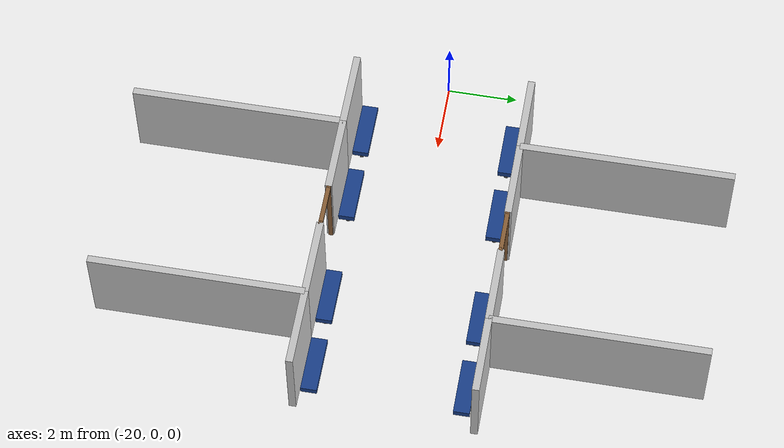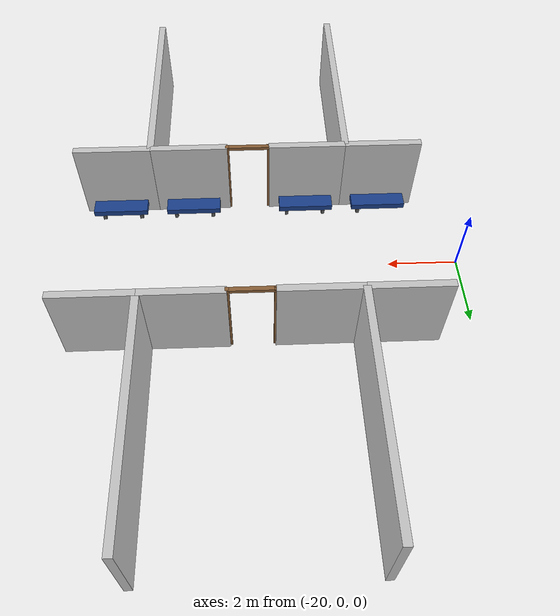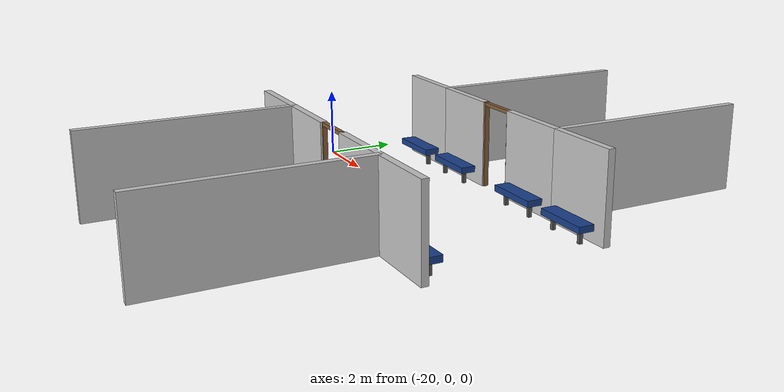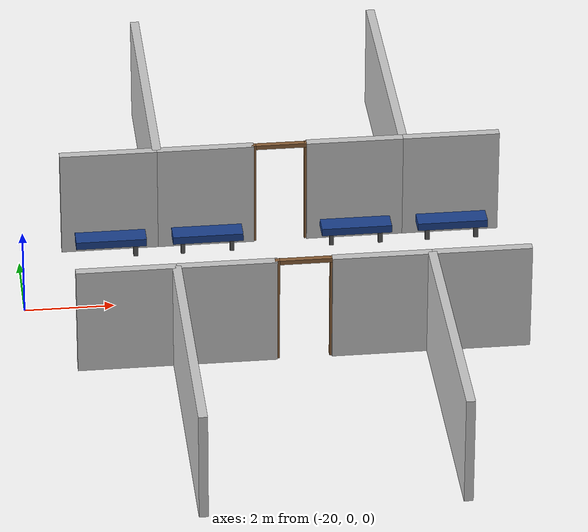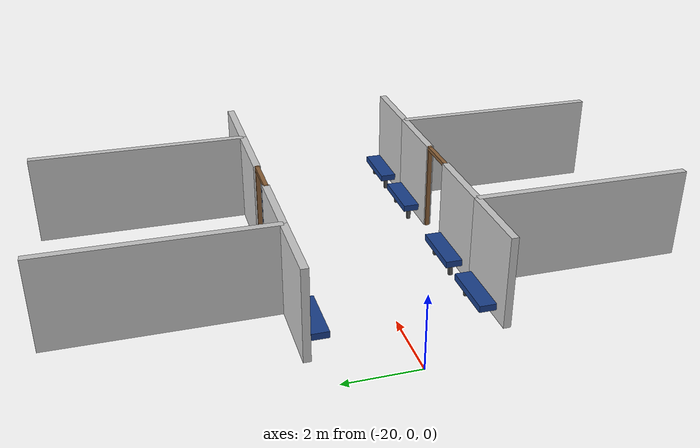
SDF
<sdf version="1.9">
 <world name="hospital_easy">
  <model name="north_partition_1">
   <static>true</static>
   <pose>-16.800 5.500 1.250 0 0 0</pose>
   <link name="link">
    <collision name="collision"><geometry><box><size>0.200 6.000 2.500</size></box></geometry></collision>
    <visual name="visual">
     <geometry><box><size>0.200 6.000 2.500</size></box></geometry>
     <material><ambient>0.78 0.78 0.78 1.0</ambient><diffuse>0.78 0.78 0.78 1.0</diffuse></material>
    </visual>
   </link>
  </model>
  <model name="north_partition_2">
   <static>true</static>
   <pose>-11.200 5.500 1.250 0 0 0</pose>
   <link name="link">
    <collision name="collision"><geometry><box><size>0.200 6.000 2.500</size></box></geometry></collision>
    <visual name="visual">
     <geometry><box><size>0.200 6.000 2.500</size></box></geometry>
     <material><ambient>0.78 0.78 0.78 1.0</ambient><diffuse>0.78 0.78 0.78 1.0</diffuse></material>
    </visual>
   </link>
  </model>
  <model name="south_partition_1">
   <static>true</static>
   <pose>-16.800 -5.500 1.250 0 0 0</pose>
   <link name="link">
    <collision name="collision"><geometry><box><size>0.200 6.000 2.500</size></box></geometry></collision>
    <visual name="visual">
     <geometry><box><size>0.200 6.000 2.500</size></box></geometry>
     <material><ambient>0.78 0.78 0.78 1.0</ambient><diffuse>0.78 0.78 0.78 1.0</diffuse></material>
    </visual>
   </link>
  </model>
  <model name="south_partition_2">
   <static>true</static>
   <pose>-11.200 -5.500 1.250 0 0 0</pose>
   <link name="link">
    <collision name="collision"><geometry><box><size>0.200 6.000 2.500</size></box></geometry></collision>
    <visual name="visual">
     <geometry><box><size>0.200 6.000 2.500</size></box></geometry>
     <material><ambient>0.78 0.78 0.78 1.0</ambient><diffuse>0.78 0.78 0.78 1.0</diffuse></material>
    </visual>
   </link>
  </model>
  <model name="north_room_02_wall_right">
   <static>true</static>
   <pose>-17.900 2.500 1.250 0 0 0</pose>
   <link name="link">
    <collision name="collision"><geometry><box><size>2.200 0.200 2.500</size></box></geometry></collision>
    <visual name="visual">
     <geometry><box><size>2.200 0.200 2.500</size></box></geometry>
     <material><ambient>0.78 0.78 0.78 1.0</ambient><diffuse>0.78 0.78 0.78 1.0</diffuse></material>
    </visual>
   </link>
  </model>
  <model name="north_room_03_wall_left">
   <static>true</static>
   <pose>-15.700 2.500 1.250 0 0 0</pose>
   <link name="link">
    <collision name="collision"><geometry><box><size>2.200 0.200 2.500</size></box></geometry></collision>
    <visual name="visual">
     <geometry><box><size>2.200 0.200 2.500</size></box></geometry>
     <material><ambient>0.78 0.78 0.78 1.0</ambient><diffuse>0.78 0.78 0.78 1.0</diffuse></material>
    </visual>
   </link>
  </model>
  <model name="north_room_03_wall_right">
   <static>true</static>
   <pose>-12.300 2.500 1.250 0 0 0</pose>
   <link name="link">
    <collision name="collision"><geometry><box><size>2.200 0.200 2.500</size></box></geometry></collision>
    <visual name="visual">
     <geometry><box><size>2.200 0.200 2.500</size></box></geometry>
     <material><ambient>0.78 0.78 0.78 1.0</ambient><diffuse>0.78 0.78 0.78 1.0</diffuse></material>
    </visual>
   </link>
  </model>
  <model name="north_room_04_wall_left">
   <static>true</static>
   <pose>-10.100 2.500 1.250 0 0 0</pose>
   <link name="link">
    <collision name="collision"><geometry><box><size>2.200 0.200 2.500</size></box></geometry></collision>
    <visual name="visual">
     <geometry><box><size>2.200 0.200 2.500</size></box></geometry>
     <material><ambient>0.78 0.78 0.78 1.0</ambient><diffuse>0.78 0.78 0.78 1.0</diffuse></material>
    </visual>
   </link>
  </model>
  <model name="south_room_02_wall_right">
   <static>true</static>
   <pose>-17.900 -2.500 1.250 0 0 0</pose>
   <link name="link">
    <collision name="collision"><geometry><box><size>2.200 0.200 2.500</size></box></geometry></collision>
    <visual name="visual">
     <geometry><box><size>2.200 0.200 2.500</size></box></geometry>
     <material><ambient>0.78 0.78 0.78 1.0</ambient><diffuse>0.78 0.78 0.78 1.0</diffuse></material>
    </visual>
   </link>
  </model>
  <model name="south_room_03_wall_left">
   <static>true</static>
   <pose>-15.700 -2.500 1.250 0 0 0</pose>
   <link name="link">
    <collision name="collision"><geometry><box><size>2.200 0.200 2.500</size></box></geometry></collision>
    <visual name="visual">
     <geometry><box><size>2.200 0.200 2.500</size></box></geometry>
     <material><ambient>0.78 0.78 0.78 1.0</ambient><diffuse>0.78 0.78 0.78 1.0</diffuse></material>
    </visual>
   </link>
  </model>
  <model name="south_room_03_wall_right">
   <static>true</static>
   <pose>-12.300 -2.500 1.250 0 0 0</pose>
   <link name="link">
    <collision name="collision"><geometry><box><size>2.200 0.200 2.500</size></box></geometry></collision>
    <visual name="visual">
     <geometry><box><size>2.200 0.200 2.500</size></box></geometry>
     <material><ambient>0.78 0.78 0.78 1.0</ambient><diffuse>0.78 0.78 0.78 1.0</diffuse></material>
    </visual>
   </link>
  </model>
  <model name="south_room_04_wall_left">
   <static>true</static>
   <pose>-10.100 -2.500 1.250 0 0 0</pose>
   <link name="link">
    <collision name="collision"><geometry><box><size>2.200 0.200 2.500</size></box></geometry></collision>
    <visual name="visual">
     <geometry><box><size>2.200 0.200 2.500</size></box></geometry>
     <material><ambient>0.78 0.78 0.78 1.0</ambient><diffuse>0.78 0.78 0.78 1.0</diffuse></material>
    </visual>
   </link>
  </model>
  <model name="north_door_03_left">
   <static>true</static>
   <pose>-14.600 2.490 1.250 0 0 0</pose>
   <link name="link">
    <collision name="collision"><geometry><box><size>0.100 0.120 2.500</size></box></geometry></collision>
    <visual name="visual">
     <geometry><box><size>0.100 0.120 2.500</size></box></geometry>
     <material><ambient>0.55 0.38 0.22 1.0</ambient><diffuse>0.55 0.38 0.22 1.0</diffuse></material>
    </visual>
   </link>
  </model>
  <model name="north_door_03_right">
   <static>true</static>
   <pose>-13.400 2.490 1.250 0 0 0</pose>
   <link name="link">
    <collision name="collision"><geometry><box><size>0.100 0.120 2.500</size></box></geometry></collision>
    <visual name="visual">
     <geometry><box><size>0.100 0.120 2.500</size></box></geometry>
     <material><ambient>0.55 0.38 0.22 1.0</ambient><diffuse>0.55 0.38 0.22 1.0</diffuse></material>
    </visual>
   </link>
  </model>
  <model name="north_door_03_top">
   <static>true</static>
   <pose>-14.000 2.490 2.450 0 0 0</pose>
   <link name="link">
    <collision name="collision"><geometry><box><size>1.200 0.120 0.100</size></box></geometry></collision>
    <visual name="visual">
     <geometry><box><size>1.200 0.120 0.100</size></box></geometry>
     <material><ambient>0.55 0.38 0.22 1.0</ambient><diffuse>0.55 0.38 0.22 1.0</diffuse></material>
    </visual>
   </link>
  </model>
  <model name="south_door_03_left">
   <static>true</static>
   <pose>-14.600 -2.490 1.250 0 0 0</pose>
   <link name="link">
    <collision name="collision"><geometry><box><size>0.100 0.120 2.500</size></box></geometry></collision>
    <visual name="visual">
     <geometry><box><size>0.100 0.120 2.500</size></box></geometry>
     <material><ambient>0.55 0.38 0.22 1.0</ambient><diffuse>0.55 0.38 0.22 1.0</diffuse></material>
    </visual>
   </link>
  </model>
  <model name="south_door_03_right">
   <static>true</static>
   <pose>-13.400 -2.490 1.250 0 0 0</pose>
   <link name="link">
    <collision name="collision"><geometry><box><size>0.100 0.120 2.500</size></box></geometry></collision>
    <visual name="visual">
     <geometry><box><size>0.100 0.120 2.500</size></box></geometry>
     <material><ambient>0.55 0.38 0.22 1.0</ambient><diffuse>0.55 0.38 0.22 1.0</diffuse></material>
    </visual>
   </link>
  </model>
  <model name="south_door_03_top">
   <static>true</static>
   <pose>-14.000 -2.490 2.450 0 0 0</pose>
   <link name="link">
    <collision name="collision"><geometry><box><size>1.200 0.120 0.100</size></box></geometry></collision>
    <visual name="visual">
     <geometry><box><size>1.200 0.120 0.100</size></box></geometry>
     <material><ambient>0.55 0.38 0.22 1.0</ambient><diffuse>0.55 0.38 0.22 1.0</diffuse></material>
    </visual>
   </link>
  </model>
  <model name="north_room_02_bench_right_seat">
   <static>true</static>
   <pose>-17.900 2.100 0.450 0 0 0</pose>
   <link name="link">
    <collision name="collision"><geometry><box><size>1.600 0.450 0.180</size></box></geometry></collision>
    <visual name="visual">
     <geometry><box><size>1.600 0.450 0.180</size></box></geometry>
     <material><ambient>0.10 0.25 0.55 1.0</ambient><diffuse>0.10 0.25 0.55 1.0</diffuse></material>
    </visual>
   </link>
  </model>
  <model name="north_room_02_bench_right_leg_right">
   <static>true</static>
   <pose>-17.340 2.100 0.135 0 0 0</pose>
   <link name="link">
    <collision name="collision"><geometry><box><size>0.100 0.100 0.270</size></box></geometry></collision>
    <visual name="visual">
     <geometry><box><size>0.100 0.100 0.270</size></box></geometry>
     <material><ambient>0.35 0.35 0.35 1.0</ambient><diffuse>0.35 0.35 0.35 1.0</diffuse></material>
    </visual>
   </link>
  </model>
  <model name="north_room_03_bench_left_seat">
   <static>true</static>
   <pose>-15.700 2.100 0.450 0 0 0</pose>
   <link name="link">
    <collision name="collision"><geometry><box><size>1.600 0.450 0.180</size></box></geometry></collision>
    <visual name="visual">
     <geometry><box><size>1.600 0.450 0.180</size></box></geometry>
     <material><ambient>0.10 0.25 0.55 1.0</ambient><diffuse>0.10 0.25 0.55 1.0</diffuse></material>
    </visual>
   </link>
  </model>
  <model name="north_room_03_bench_left_leg_left">
   <static>true</static>
   <pose>-16.260 2.100 0.135 0 0 0</pose>
   <link name="link">
    <collision name="collision"><geometry><box><size>0.100 0.100 0.270</size></box></geometry></collision>
    <visual name="visual">
     <geometry><box><size>0.100 0.100 0.270</size></box></geometry>
     <material><ambient>0.35 0.35 0.35 1.0</ambient><diffuse>0.35 0.35 0.35 1.0</diffuse></material>
    </visual>
   </link>
  </model>
  <model name="north_room_03_bench_left_leg_right">
   <static>true</static>
   <pose>-15.140 2.100 0.135 0 0 0</pose>
   <link name="link">
    <collision name="collision"><geometry><box><size>0.100 0.100 0.270</size></box></geometry></collision>
    <visual name="visual">
     <geometry><box><size>0.100 0.100 0.270</size></box></geometry>
     <material><ambient>0.35 0.35 0.35 1.0</ambient><diffuse>0.35 0.35 0.35 1.0</diffuse></material>
    </visual>
   </link>
  </model>
  <model name="north_room_03_bench_right_seat">
   <static>true</static>
   <pose>-12.300 2.100 0.450 0 0 0</pose>
   <link name="link">
    <collision name="collision"><geometry><box><size>1.600 0.450 0.180</size></box></geometry></collision>
    <visual name="visual">
     <geometry><box><size>1.600 0.450 0.180</size></box></geometry>
     <material><ambient>0.10 0.25 0.55 1.0</ambient><diffuse>0.10 0.25 0.55 1.0</diffuse></material>
    </visual>
   </link>
  </model>
  <model name="north_room_03_bench_right_leg_left">
   <static>true</static>
   <pose>-12.860 2.100 0.135 0 0 0</pose>
   <link name="link">
    <collision name="collision"><geometry><box><size>0.100 0.100 0.270</size></box></geometry></collision>
    <visual name="visual">
     <geometry><box><size>0.100 0.100 0.270</size></box></geometry>
     <material><ambient>0.35 0.35 0.35 1.0</ambient><diffuse>0.35 0.35 0.35 1.0</diffuse></material>
    </visual>
   </link>
  </model>
  <model name="north_room_03_bench_right_leg_right">
   <static>true</static>
   <pose>-11.740 2.100 0.135 0 0 0</pose>
   <link name="link">
    <collision name="collision"><geometry><box><size>0.100 0.100 0.270</size></box></geometry></collision>
    <visual name="visual">
     <geometry><box><size>0.100 0.100 0.270</size></box></geometry>
     <material><ambient>0.35 0.35 0.35 1.0</ambient><diffuse>0.35 0.35 0.35 1.0</diffuse></material>
    </visual>
   </link>
  </model>
  <model name="north_room_04_bench_left_seat">
   <static>true</static>
   <pose>-10.100 2.100 0.450 0 0 0</pose>
   <link name="link">
    <collision name="collision"><geometry><box><size>1.600 0.450 0.180</size></box></geometry></collision>
    <visual name="visual">
     <geometry><box><size>1.600 0.450 0.180</size></box></geometry>
     <material><ambient>0.10 0.25 0.55 1.0</ambient><diffuse>0.10 0.25 0.55 1.0</diffuse></material>
    </visual>
   </link>
  </model>
  <model name="north_room_04_bench_left_leg_left">
   <static>true</static>
   <pose>-10.660 2.100 0.135 0 0 0</pose>
   <link name="link">
    <collision name="collision"><geometry><box><size>0.100 0.100 0.270</size></box></geometry></collision>
    <visual name="visual">
     <geometry><box><size>0.100 0.100 0.270</size></box></geometry>
     <material><ambient>0.35 0.35 0.35 1.0</ambient><diffuse>0.35 0.35 0.35 1.0</diffuse></material>
    </visual>
   </link>
  </model>
  <model name="north_room_04_bench_left_leg_right">
   <static>true</static>
   <pose>-9.540 2.100 0.135 0 0 0</pose>
   <link name="link">
    <collision name="collision"><geometry><box><size>0.100 0.100 0.270</size></box></geometry></collision>
    <visual name="visual">
     <geometry><box><size>0.100 0.100 0.270</size></box></geometry>
     <material><ambient>0.35 0.35 0.35 1.0</ambient><diffuse>0.35 0.35 0.35 1.0</diffuse></material>
    </visual>
   </link>
  </model>
  <model name="south_room_02_bench_right_seat">
   <static>true</static>
   <pose>-17.900 -2.100 0.450 0 0 0</pose>
   <link name="link">
    <collision name="collision"><geometry><box><size>1.600 0.450 0.180</size></box></geometry></collision>
    <visual name="visual">
     <geometry><box><size>1.600 0.450 0.180</size></box></geometry>
     <material><ambient>0.10 0.25 0.55 1.0</ambient><diffuse>0.10 0.25 0.55 1.0</diffuse></material>
    </visual>
   </link>
  </model>
  <model name="south_room_02_bench_right_leg_right">
   <static>true</static>
   <pose>-17.340 -2.100 0.135 0 0 0</pose>
   <link name="link">
    <collision name="collision"><geometry><box><size>0.100 0.100 0.270</size></box></geometry></collision>
    <visual name="visual">
     <geometry><box><size>0.100 0.100 0.270</size></box></geometry>
     <material><ambient>0.35 0.35 0.35 1.0</ambient><diffuse>0.35 0.35 0.35 1.0</diffuse></material>
    </visual>
   </link>
  </model>
  <model name="south_room_03_bench_left_seat">
   <static>true</static>
   <pose>-15.700 -2.100 0.450 0 0 0</pose>
   <link name="link">
    <collision name="collision"><geometry><box><size>1.600 0.450 0.180</size></box></geometry></collision>
    <visual name="visual">
     <geometry><box><size>1.600 0.450 0.180</size></box></geometry>
     <material><ambient>0.10 0.25 0.55 1.0</ambient><diffuse>0.10 0.25 0.55 1.0</diffuse></material>
    </visual>
   </link>
  </model>
  <model name="south_room_03_bench_left_leg_left">
   <static>true</static>
   <pose>-16.260 -2.100 0.135 0 0 0</pose>
   <link name="link">
    <collision name="collision"><geometry><box><size>0.100 0.100 0.270</size></box></geometry></collision>
    <visual name="visual">
     <geometry><box><size>0.100 0.100 0.270</size></box></geometry>
     <material><ambient>0.35 0.35 0.35 1.0</ambient><diffuse>0.35 0.35 0.35 1.0</diffuse></material>
    </visual>
   </link>
  </model>
  <model name="south_room_03_bench_left_leg_right">
   <static>true</static>
   <pose>-15.140 -2.100 0.135 0 0 0</pose>
   <link name="link">
    <collision name="collision"><geometry><box><size>0.100 0.100 0.270</size></box></geometry></collision>
    <visual name="visual">
     <geometry><box><size>0.100 0.100 0.270</size></box></geometry>
     <material><ambient>0.35 0.35 0.35 1.0</ambient><diffuse>0.35 0.35 0.35 1.0</diffuse></material>
    </visual>
   </link>
  </model>
  <model name="south_room_03_bench_right_seat">
   <static>true</static>
   <pose>-12.300 -2.100 0.450 0 0 0</pose>
   <link name="link">
    <collision name="collision"><geometry><box><size>1.600 0.450 0.180</size></box></geometry></collision>
    <visual name="visual">
     <geometry><box><size>1.600 0.450 0.180</size></box></geometry>
     <material><ambient>0.10 0.25 0.55 1.0</ambient><diffuse>0.10 0.25 0.55 1.0</diffuse></material>
    </visual>
   </link>
  </model>
  <model name="south_room_03_bench_right_leg_left">
   <static>true</static>
   <pose>-12.860 -2.100 0.135 0 0 0</pose>
   <link name="link">
    <collision name="collision"><geometry><box><size>0.100 0.100 0.270</size></box></geometry></collision>
    <visual name="visual">
     <geometry><box><size>0.100 0.100 0.270</size></box></geometry>
     <material><ambient>0.35 0.35 0.35 1.0</ambient><diffuse>0.35 0.35 0.35 1.0</diffuse></material>
    </visual>
   </link>
  </model>
  <model name="south_room_03_bench_right_leg_right">
   <static>true</static>
   <pose>-11.740 -2.100 0.135 0 0 0</pose>
   <link name="link">
    <collision name="collision"><geometry><box><size>0.100 0.100 0.270</size></box></geometry></collision>
    <visual name="visual">
     <geometry><box><size>0.100 0.100 0.270</size></box></geometry>
     <material><ambient>0.35 0.35 0.35 1.0</ambient><diffuse>0.35 0.35 0.35 1.0</diffuse></material>
    </visual>
   </link>
  </model>
  <model name="south_room_04_bench_left_seat">
   <static>true</static>
   <pose>-10.100 -2.100 0.450 0 0 0</pose>
   <link name="link">
    <collision name="collision"><geometry><box><size>1.600 0.450 0.180</size></box></geometry></collision>
    <visual name="visual">
     <geometry><box><size>1.600 0.450 0.180</size></box></geometry>
     <material><ambient>0.10 0.25 0.55 1.0</ambient><diffuse>0.10 0.25 0.55 1.0</diffuse></material>
    </visual>
   </link>
  </model>
  <model name="south_room_04_bench_left_leg_left">
   <static>true</static>
   <pose>-10.660 -2.100 0.135 0 0 0</pose>
   <link name="link">
    <collision name="collision"><geometry><box><size>0.100 0.100 0.270</size></box></geometry></collision>
    <visual name="visual">
     <geometry><box><size>0.100 0.100 0.270</size></box></geometry>
     <material><ambient>0.35 0.35 0.35 1.0</ambient><diffuse>0.35 0.35 0.35 1.0</diffuse></material>
    </visual>
   </link>
  </model>
  <model name="south_room_04_bench_left_leg_right">
   <static>true</static>
   <pose>-9.540 -2.100 0.135 0 0 0</pose>
   <link name="link">
    <collision name="collision"><geometry><box><size>0.100 0.100 0.270</size></box></geometry></collision>
    <visual name="visual">
     <geometry><box><size>0.100 0.100 0.270</size></box></geometry>
     <material><ambient>0.35 0.35 0.35 1.0</ambient><diffuse>0.35 0.35 0.35 1.0</diffuse></material>
    </visual>
   </link>
  </model>
  <model name="hospital_walking_human_proxy">
   <pose>-14.000 0.000 0.850 0 0 0.00000</pose>
   <link name="link">
    <gravity>false</gravity>
    <kinematic>true</kinematic>
    <collision name="collision">
     <geometry><cylinder><radius>0.28</radius><length>1.70</length></cylinder></geometry>
    </collision>
    <visual name="proxy_visual">
     <geometry><cylinder><radius>0.28</radius><length>1.70</length></cylinder></geometry>
     <transparency>1.0</transparency>
    </visual>
   </link>
  </model>
 </world>
</sdf>
